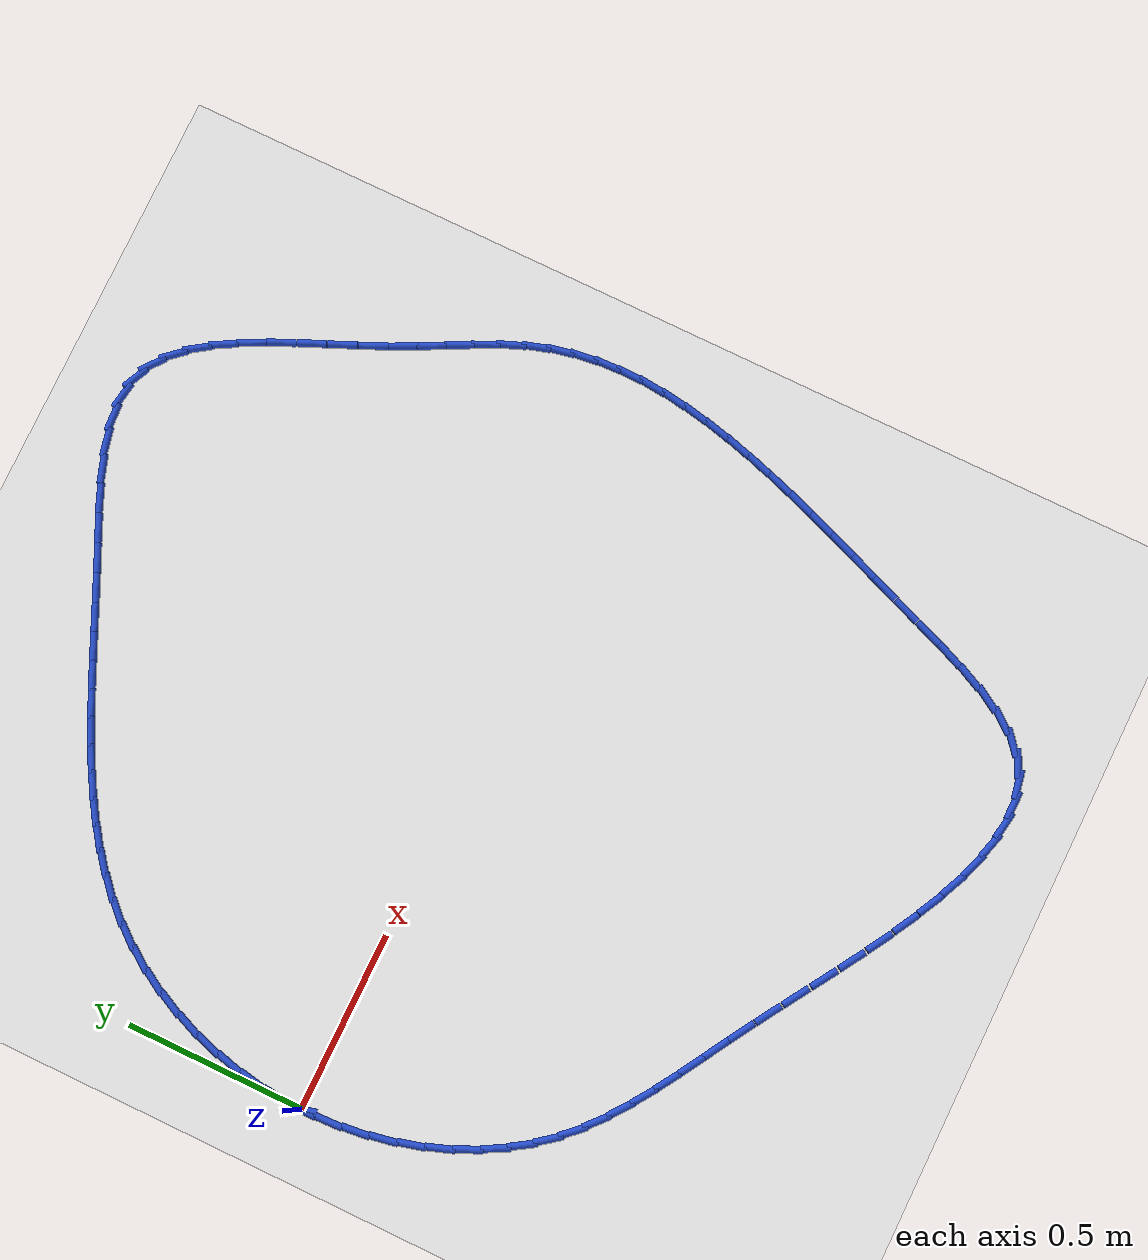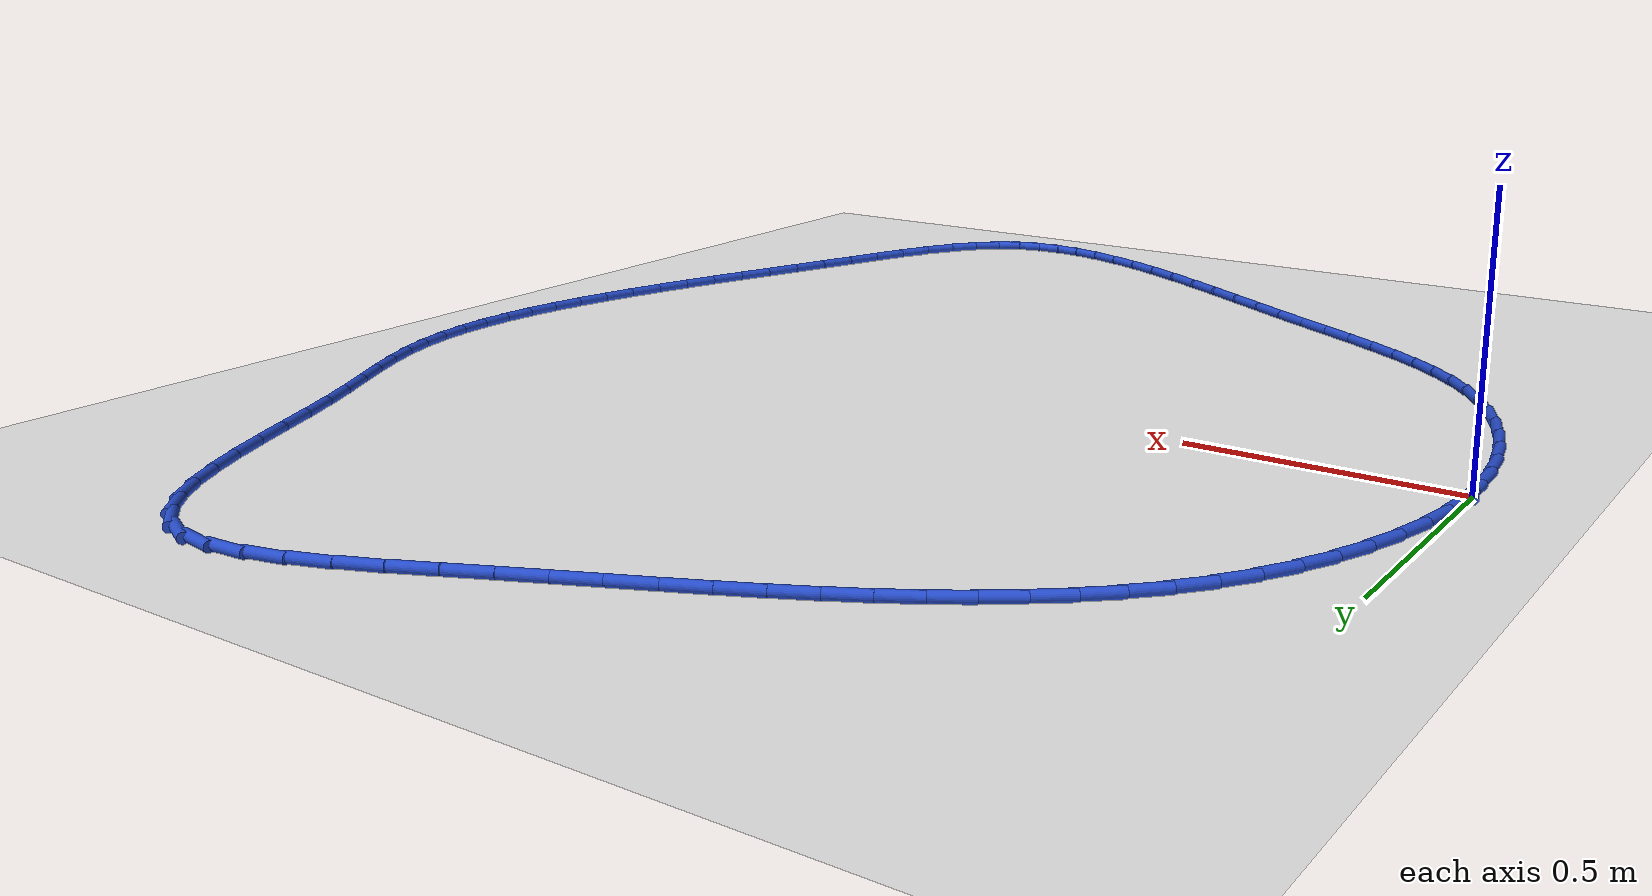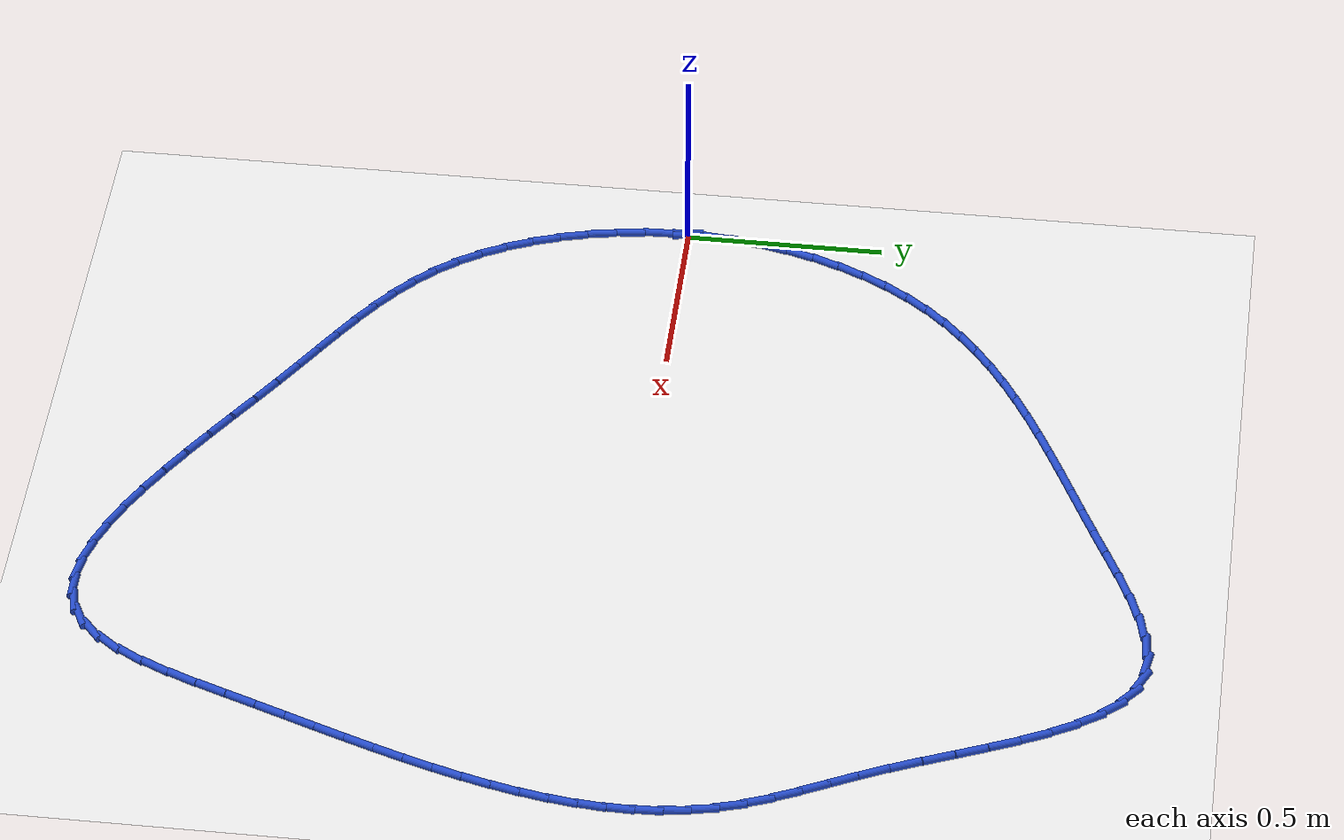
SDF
<sdf version="1.6">
 <world name="default">
  <light name="sun" type="directional">
   <pose>0 0 10 0 -0 0</pose>
   <diffuse>0.8 0.8 0.8 1</diffuse>
   <specular>0.2 0.2 0.2 1</specular>
   <attenuation>
    <range>1000</range>
    <constant>0.9</constant>
    <linear>0.01</linear>
    <quadratic>0.001</quadratic>
   </attenuation>
   <direction>-0.5 0.1 -0.9</direction>
  </light>
  <model name="ground_plane">
   <static>1</static>
   <link name="link">
    <collision name="collision">
     <geometry><plane><normal>0 0 1</normal><size>100 100</size></plane></geometry>
     <surface><friction><ode><mu>100</mu><mu2>50</mu2></ode></friction></surface>
    </collision>
    <visual name="visual">
     <cast_shadows>0</cast_shadows>
     <geometry><plane><normal>0 0 1</normal><size>100 100</size></plane></geometry>
     <material>
      <script><uri>file://media/materials/scripts/gazebo.material</uri><name>Gazebo/WhiteGlow</name></script>
     </material>
    </visual>
   </link>
  </model>
  <gravity>0 0 -9.8</gravity>
  <magnetic_field>6e-06 2.3e-05 -4.2e-05</magnetic_field>
  <atmosphere type="adiabatic"/>
  <physics name="default_physics" default="0" type="ode">
   <max_step_size>0.001</max_step_size>
   <real_time_factor>1</real_time_factor>
   <real_time_update_rate>1000</real_time_update_rate>
  </physics>
  <scene><ambient>0.4 0.4 0.4 1</ambient><background>0.7 0.7 0.7 1</background><shadows>1</shadows></scene>
  <spherical_coordinates>
   <surface_model>EARTH_WGS84</surface_model>
   <latitude_deg>0</latitude_deg>
   <longitude_deg>0</longitude_deg>
   <elevation>0</elevation>
   <heading_deg>0</heading_deg>
  </spherical_coordinates>
  <model name="line">
   <link name="link_0">
    <pose>-2.42861286636753e-17 -9.71445146547012e-17 0.01 0 1.57 1.528046374217537</pose>
    <collision name="collision">
     <geometry><cylinder><radius>0.01</radius><length>0.08</length></cylinder></geometry>
    </collision>
    <visual name="visual">
     <material>
      <script><name>Gazebo/Blue</name><uri>file://media/materials/scripts/gazebo.material</uri></script>
     </material>
     <geometry><cylinder><radius>0.01</radius><length>0.08</length></cylinder></geometry>
    </visual>
   </link>
   <link name="link_1">
    <pose>0.0032014036852461335 0.0748410934730579 0.01 0 1.57 1.45437170285157</pose>
    <collision name="collision">
     <geometry><cylinder><radius>0.01</radius><length>0.08</length></cylinder></geometry>
    </collision>
    <visual name="visual">
     <material>
      <script><name>Gazebo/Blue</name><uri>file://media/materials/scripts/gazebo.material</uri></script>
     </material>
     <geometry><cylinder><radius>0.01</radius><length>0.08</length></cylinder></geometry>
    </visual>
   </link>
   <link name="link_2">
    <pose>0.011870738166101645 0.14896741392785764 0.01 0 1.57 1.3823800493612672</pose>
    <collision name="collision">
     <geometry><cylinder><radius>0.01</radius><length>0.08</length></cylinder></geometry>
    </collision>
    <visual name="visual">
     <material>
      <script><name>Gazebo/Blue</name><uri>file://media/materials/scripts/gazebo.material</uri></script>
     </material>
     <geometry><cylinder><radius>0.01</radius><length>0.08</length></cylinder></geometry>
    </visual>
   </link>
   <link name="link_3">
    <pose>0.025777867337731478 0.2219025532619092 0.01 0 1.57 1.3113718995489045</pose>
    <collision name="collision">
     <geometry><cylinder><radius>0.01</radius><length>0.08</length></cylinder></geometry>
    </collision>
    <visual name="visual">
     <material>
      <script><name>Gazebo/Blue</name><uri>file://media/materials/scripts/gazebo.material</uri></script>
     </material>
     <geometry><cylinder><radius>0.01</radius><length>0.08</length></cylinder></geometry>
    </visual>
   </link>
   <link name="link_4">
    <pose>0.044692655095300605 0.293170103372723 0.01 0 1.57 1.2405920967178967</pose>
    <collision name="collision">
     <geometry><cylinder><radius>0.01</radius><length>0.08</length></cylinder></geometry>
    </collision>
    <visual name="visual">
     <material>
      <script><name>Gazebo/Blue</name><uri>file://media/materials/scripts/gazebo.material</uri></script>
     </material>
     <geometry><cylinder><radius>0.01</radius><length>0.08</length></cylinder></geometry>
    </visual>
   </link>
   <link name="link_5">
    <pose>0.06838496533397398 0.36229365615780895 0.01 0 1.57 1.1692331884978302</pose>
    <collision name="collision">
     <geometry><cylinder><radius>0.01</radius><length>0.08</length></cylinder></geometry>
    </collision>
    <visual name="visual">
     <material>
      <script><name>Gazebo/Blue</name><uri>file://media/materials/scripts/gazebo.material</uri></script>
     </material>
     <geometry><cylinder><radius>0.01</radius><length>0.08</length></cylinder></geometry>
    </visual>
   </link>
   <link name="link_6">
    <pose>0.09662466194891661 0.42879680351467764 0.01 0 1.57 1.0964346640921956</pose>
    <collision name="collision">
     <geometry><cylinder><radius>0.01</radius><length>0.08</length></cylinder></geometry>
    </collision>
    <visual name="visual">
     <material>
      <script><name>Gazebo/Blue</name><uri>file://media/materials/scripts/gazebo.material</uri></script>
     </material>
     <geometry><cylinder><radius>0.01</radius><length>0.08</length></cylinder></geometry>
    </visual>
   </link>
   <link name="link_7">
    <pose>0.12918160883529345 0.4922031373408391 0.01 0 1.57 1.0212815280685452</pose>
    <collision name="collision">
     <geometry><cylinder><radius>0.01</radius><length>0.08</length></cylinder></geometry>
    </collision>
    <visual name="visual">
     <material>
      <script><name>Gazebo/Blue</name><uri>file://media/materials/scripts/gazebo.material</uri></script>
     </material>
     <geometry><cylinder><radius>0.01</radius><length>0.08</length></cylinder></geometry>
    </visual>
   </link>
   <link name="link_8">
    <pose>0.16582566988826944 0.5520362495338035 0.01 0 1.57 0.942865909820828</pose>
    <collision name="collision">
     <geometry><cylinder><radius>0.01</radius><length>0.08</length></cylinder></geometry>
    </collision>
    <visual name="visual">
     <material>
      <script><name>Gazebo/Blue</name><uri>file://media/materials/scripts/gazebo.material</uri></script>
     </material>
     <geometry><cylinder><radius>0.01</radius><length>0.08</length></cylinder></geometry>
    </visual>
   </link>
   <link name="link_9">
    <pose>0.2063269759652634 0.6078270371231659 0.01 0 1.57 0.8633860367128798</pose>
    <collision name="collision">
     <geometry><cylinder><radius>0.01</radius><length>0.08</length></cylinder></geometry>
    </collision>
    <visual name="visual">
     <material>
      <script><name>Gazebo/Blue</name><uri>file://media/materials/scripts/gazebo.material</uri></script>
     </material>
     <geometry><cylinder><radius>0.01</radius><length>0.08</length></cylinder></geometry>
    </visual>
   </link>
   <link name="link_10">
    <pose>0.2504682934167039 0.6594521536792003 0.01 0 1.57 0.7879421222397767</pose>
    <collision name="collision">
     <geometry><cylinder><radius>0.01</radius><length>0.08</length></cylinder></geometry>
    </collision>
    <visual name="visual">
     <material>
      <script><name>Gazebo/Blue</name><uri>file://media/materials/scripts/gazebo.material</uri></script>
     </material>
     <geometry><cylinder><radius>0.01</radius><length>0.08</length></cylinder></geometry>
    </visual>
   </link>
   <link name="link_11">
    <pose>0.29805024281224934 0.7072768140869581 0.01 0 1.57 0.7183269408657676</pose>
    <collision name="collision">
     <geometry><cylinder><radius>0.01</radius><length>0.08</length></cylinder></geometry>
    </collision>
    <visual name="visual">
     <material>
      <script><name>Gazebo/Blue</name><uri>file://media/materials/scripts/gazebo.material</uri></script>
     </material>
     <geometry><cylinder><radius>0.01</radius><length>0.08</length></cylinder></geometry>
    </visual>
   </link>
   <link name="link_12">
    <pose>0.34887479469578697 0.7517031738098163 0.01 0 1.57 0.6556072891083738</pose>
    <collision name="collision">
     <geometry><cylinder><radius>0.01</radius><length>0.08</length></cylinder></geometry>
    </collision>
    <visual name="visual">
     <material>
      <script><name>Gazebo/Blue</name><uri>file://media/materials/scripts/gazebo.material</uri></script>
     </material>
     <geometry><cylinder><radius>0.01</radius><length>0.08</length></cylinder></geometry>
    </visual>
   </link>
   <link name="link_13">
    <pose>0.40274391961120387 0.7931333883111522 0.01 0 1.57 0.6004196233857116</pose>
    <collision name="collision">
     <geometry><cylinder><radius>0.01</radius><length>0.08</length></cylinder></geometry>
    </collision>
    <visual name="visual">
     <material>
      <script><name>Gazebo/Blue</name><uri>file://media/materials/scripts/gazebo.material</uri></script>
     </material>
     <geometry><cylinder><radius>0.01</radius><length>0.08</length></cylinder></geometry>
    </visual>
   </link>
   <link name="link_14">
    <pose>0.45945958810238685 0.8319696130543419 0.01 0 1.57 0.553029410602601</pose>
    <collision name="collision">
     <geometry><cylinder><radius>0.01</radius><length>0.08</length></cylinder></geometry>
    </collision>
    <visual name="visual">
     <material>
      <script><name>Gazebo/Blue</name><uri>file://media/materials/scripts/gazebo.material</uri></script>
     </material>
     <geometry><cylinder><radius>0.01</radius><length>0.08</length></cylinder></geometry>
    </visual>
   </link>
   <link name="link_15">
    <pose>0.5188237707132229 0.8686140035027629 0.01 0 1.57 0.5134206662682532</pose>
    <collision name="collision">
     <geometry><cylinder><radius>0.01</radius><length>0.08</length></cylinder></geometry>
    </collision>
    <visual name="visual">
     <material>
      <script><name>Gazebo/Blue</name><uri>file://media/materials/scripts/gazebo.material</uri></script>
     </material>
     <geometry><cylinder><radius>0.01</radius><length>0.08</length></cylinder></geometry>
    </visual>
   </link>
   <link name="link_16">
    <pose>0.5806384379875995 0.9034687151197911 0.01 0 1.57 0.4813884986732302</pose>
    <collision name="collision">
     <geometry><cylinder><radius>0.01</radius><length>0.08</length></cylinder></geometry>
    </collision>
    <visual name="visual">
     <material>
      <script><name>Gazebo/Blue</name><uri>file://media/materials/scripts/gazebo.material</uri></script>
     </material>
     <geometry><cylinder><radius>0.01</radius><length>0.08</length></cylinder></geometry>
    </visual>
   </link>
   <link name="link_17">
    <pose>0.6447055604694033 0.9369359033688042 0.01 0 1.57 0.45661838418170775</pose>
    <collision name="collision">
     <geometry><cylinder><radius>0.01</radius><length>0.08</length></cylinder></geometry>
    </collision>
    <visual name="visual">
     <material>
      <script><name>Gazebo/Blue</name><uri>file://media/materials/scripts/gazebo.material</uri></script>
     </material>
     <geometry><cylinder><radius>0.01</radius><length>0.08</length></cylinder></geometry>
    </visual>
   </link>
   <link name="link_18">
    <pose>0.7108271087025214 0.9694177237131784 0.01 0 1.57 0.43874589583866824</pose>
    <collision name="collision">
     <geometry><cylinder><radius>0.01</radius><length>0.08</length></cylinder></geometry>
    </collision>
    <visual name="visual">
     <material>
      <script><name>Gazebo/Blue</name><uri>file://media/materials/scripts/gazebo.material</uri></script>
     </material>
     <geometry><cylinder><radius>0.01</radius><length>0.08</length></cylinder></geometry>
    </visual>
   </link>
   <link name="link_19">
    <pose>0.7788050532308409 1.0013163316162905 0.01 0 1.57 0.4273970292135302</pose>
    <collision name="collision">
     <geometry><cylinder><radius>0.01</radius><length>0.08</length></cylinder></geometry>
    </collision>
    <visual name="visual">
     <material>
      <script><name>Gazebo/Blue</name><uri>file://media/materials/scripts/gazebo.material</uri></script>
     </material>
     <geometry><cylinder><radius>0.01</radius><length>0.08</length></cylinder></geometry>
    </visual>
   </link>
   <link name="link_20">
    <pose>0.8484413645982489 1.0330338825415177 0.01 0 1.57 0.42221226081419305</pose>
    <collision name="collision">
     <geometry><cylinder><radius>0.01</radius><length>0.08</length></cylinder></geometry>
    </collision>
    <visual name="visual">
     <material>
      <script><name>Gazebo/Blue</name><uri>file://media/materials/scripts/gazebo.material</uri></script>
     </material>
     <geometry><cylinder><radius>0.01</radius><length>0.08</length></cylinder></geometry>
    </visual>
   </link>
   <link name="link_21">
    <pose>0.9195380133486322 1.0649725319522365 0.01 0 1.57 0.4228582112387548</pose>
    <collision name="collision">
     <geometry><cylinder><radius>0.01</radius><length>0.08</length></cylinder></geometry>
    </collision>
    <visual name="visual">
     <material>
      <script><name>Gazebo/Blue</name><uri>file://media/materials/scripts/gazebo.material</uri></script>
     </material>
     <geometry><cylinder><radius>0.01</radius><length>0.08</length></cylinder></geometry>
    </visual>
   </link>
   <link name="link_22">
    <pose>0.991896970025878 1.0975344353118237 0.01 0 1.57 0.42902863757825377</pose>
    <collision name="collision">
     <geometry><cylinder><radius>0.01</radius><length>0.08</length></cylinder></geometry>
    </collision>
    <visual name="visual">
     <material>
      <script><name>Gazebo/Blue</name><uri>file://media/materials/scripts/gazebo.material</uri></script>
     </material>
     <geometry><cylinder><radius>0.01</radius><length>0.08</length></cylinder></geometry>
    </visual>
   </link>
   <link name="link_23">
    <pose>1.0653201564055734 1.1311215690064915 0.01 0 1.57 0.4348028106694274</pose>
    <collision name="collision">
     <geometry><cylinder><radius>0.01</radius><length>0.08</length></cylinder></geometry>
    </collision>
    <visual name="visual">
     <material>
      <script><name>Gazebo/Blue</name><uri>file://media/materials/scripts/gazebo.material</uri></script>
     </material>
     <geometry><cylinder><radius>0.01</radius><length>0.08</length></cylinder></geometry>
    </visual>
   </link>
   <link name="link_24">
    <pose>1.139450217808166 1.1655510463835328 0.01 0 1.57 0.42193704675553034</pose>
    <collision name="collision">
     <geometry><cylinder><radius>0.01</radius><length>0.08</length></cylinder></geometry>
    </collision>
    <visual name="visual">
     <material>
      <script><name>Gazebo/Blue</name><uri>file://media/materials/scripts/gazebo.material</uri></script>
     </material>
     <geometry><cylinder><radius>0.01</radius><length>0.08</length></cylinder></geometry>
    </visual>
   </link>
   <link name="link_25">
    <pose>1.2134162550437269 1.1987542456846056 0.01 0 1.57 0.3852068171505385</pose>
    <collision name="collision">
     <geometry><cylinder><radius>0.01</radius><length>0.08</length></cylinder></geometry>
    </collision>
    <visual name="visual">
     <material>
      <script><name>Gazebo/Blue</name><uri>file://media/materials/scripts/gazebo.material</uri></script>
     </material>
     <geometry><cylinder><radius>0.01</radius><length>0.08</length></cylinder></geometry>
    </visual>
   </link>
   <link name="link_26">
    <pose>1.2862440655493776 1.2282832152335816 0.01 0 1.57 0.3196490474521178</pose>
    <collision name="collision">
     <geometry><cylinder><radius>0.01</radius><length>0.08</length></cylinder></geometry>
    </collision>
    <visual name="visual">
     <material>
      <script><name>Gazebo/Blue</name><uri>file://media/materials/scripts/gazebo.material</uri></script>
     </material>
     <geometry><cylinder><radius>0.01</radius><length>0.08</length></cylinder></geometry>
    </visual>
   </link>
   <link name="link_27">
    <pose>1.3569594467622408 1.251690003354331 0.01 0 1.57 0.21596251849452877</pose>
    <collision name="collision">
     <geometry><cylinder><radius>0.01</radius><length>0.08</length></cylinder></geometry>
    </collision>
    <visual name="visual">
     <material>
      <script><name>Gazebo/Blue</name><uri>file://media/materials/scripts/gazebo.material</uri></script>
     </material>
     <geometry><cylinder><radius>0.01</radius><length>0.08</length></cylinder></geometry>
    </visual>
   </link>
   <link name="link_28">
    <pose>1.4245881961194373 1.2665266583707233 0.01 0 1.57 0.05999861827035014</pose>
    <collision name="collision">
     <geometry><cylinder><radius>0.01</radius><length>0.08</length></cylinder></geometry>
    </collision>
    <visual name="visual">
     <material>
      <script><name>Gazebo/Blue</name><uri>file://media/materials/scripts/gazebo.material</uri></script>
     </material>
     <geometry><cylinder><radius>0.01</radius><length>0.08</length></cylinder></geometry>
    </visual>
   </link>
   <link name="link_29">
    <pose>1.4881561110580894 1.27034522860663 0.01 0 1.57 -0.1633416712223227</pose>
    <collision name="collision">
     <geometry><cylinder><radius>0.01</radius><length>0.08</length></cylinder></geometry>
    </collision>
    <visual name="visual">
     <material>
      <script><name>Gazebo/Blue</name><uri>file://media/materials/scripts/gazebo.material</uri></script>
     </material>
     <geometry><cylinder><radius>0.01</radius><length>0.08</length></cylinder></geometry>
    </visual>
   </link>
   <link name="link_30">
    <pose>1.5466892264995975 1.260698384504559 0.01 0 1.57 -0.4350478159116362</pose>
    <collision name="collision">
     <geometry><cylinder><radius>0.01</radius><length>0.08</length></cylinder></geometry>
    </collision>
    <visual name="visual">
     <material>
      <script><name>Gazebo/Blue</name><uri>file://media/materials/scripts/gazebo.material</uri></script>
     </material>
     <geometry><cylinder><radius>0.01</radius><length>0.08</length></cylinder></geometry>
    </visual>
   </link>
   <link name="link_31">
    <pose>1.5995861563114733 1.236114811880975 0.01 0 1.57 -0.6723388079699042</pose>
    <collision name="collision">
     <geometry><cylinder><radius>0.01</radius><length>0.08</length></cylinder></geometry>
    </collision>
    <visual name="visual">
     <material>
      <script><name>Gazebo/Blue</name><uri>file://media/materials/scripts/gazebo.material</uri></script>
     </material>
     <geometry><cylinder><radius>0.01</radius><length>0.08</length></cylinder></geometry>
    </visual>
   </link>
   <link name="link_32">
    <pose>1.647371961164178 1.1980740594743922 0.01 0 1.57 -0.8504593356943528</pose>
    <collision name="collision">
     <geometry><cylinder><radius>0.01</radius><length>0.08</length></cylinder></geometry>
    </collision>
    <visual name="visual">
     <material>
      <script><name>Gazebo/Blue</name><uri>file://media/materials/scripts/gazebo.material</uri></script>
     </material>
     <geometry><cylinder><radius>0.01</radius><length>0.08</length></cylinder></geometry>
    </visual>
   </link>
   <link name="link_33">
    <pose>1.6907837591904258 1.1486111860581305 0.01 0 1.57 -0.9764491810154835</pose>
    <collision name="collision">
     <geometry><cylinder><radius>0.01</radius><length>0.08</length></cylinder></geometry>
    </collision>
    <visual name="visual">
     <material>
      <script><name>Gazebo/Blue</name><uri>file://media/materials/scripts/gazebo.material</uri></script>
     </material>
     <geometry><cylinder><radius>0.01</radius><length>0.08</length></cylinder></geometry>
    </visual>
   </link>
   <link name="link_34">
    <pose>1.7305586685229333 1.0897612504055119 0.01 0 1.57 -1.0625871320391789</pose>
    <collision name="collision">
     <geometry><cylinder><radius>0.01</radius><length>0.08</length></cylinder></geometry>
    </collision>
    <visual name="visual">
     <material>
      <script><name>Gazebo/Blue</name><uri>file://media/materials/scripts/gazebo.material</uri></script>
     </material>
     <geometry><cylinder><radius>0.01</radius><length>0.08</length></cylinder></geometry>
    </visual>
   </link>
   <link name="link_35">
    <pose>1.7674338072944156 1.023559311289856 0.01 0 1.57 -1.1189282467852923</pose>
    <collision name="collision">
     <geometry><cylinder><radius>0.01</radius><length>0.08</length></cylinder></geometry>
    </collision>
    <visual name="visual">
     <material>
      <script><name>Gazebo/Blue</name><uri>file://media/materials/scripts/gazebo.material</uri></script>
     </material>
     <geometry><cylinder><radius>0.01</radius><length>0.08</length></cylinder></geometry>
    </visual>
   </link>
   <link name="link_36">
    <pose>1.802146293637588 0.9520404274844848 0.01 0 1.57 -1.1521013736844457</pose>
    <collision name="collision">
     <geometry><cylinder><radius>0.01</radius><length>0.08</length></cylinder></geometry>
    </collision>
    <visual name="visual">
     <material>
      <script><name>Gazebo/Blue</name><uri>file://media/materials/scripts/gazebo.material</uri></script>
     </material>
     <geometry><cylinder><radius>0.01</radius><length>0.08</length></cylinder></geometry>
    </visual>
   </link>
   <link name="link_37">
    <pose>1.835433245685167 0.8772396577627181 0.01 0 1.57 -1.165830015112218</pose>
    <collision name="collision">
     <geometry><cylinder><radius>0.01</radius><length>0.08</length></cylinder></geometry>
    </collision>
    <visual name="visual">
     <material>
      <script><name>Gazebo/Blue</name><uri>file://media/materials/scripts/gazebo.material</uri></script>
     </material>
     <geometry><cylinder><radius>0.01</radius><length>0.08</length></cylinder></geometry>
    </visual>
   </link>
   <link name="link_38">
    <pose>1.868031781569867 0.8011920608978772 0.01 0 1.57 -1.1614987470934435</pose>
    <collision name="collision">
     <geometry><cylinder><radius>0.01</radius><length>0.08</length></cylinder></geometry>
    </collision>
    <visual name="visual">
     <material>
      <script><name>Gazebo/Blue</name><uri>file://media/materials/scripts/gazebo.material</uri></script>
     </material>
     <geometry><cylinder><radius>0.01</radius><length>0.08</length></cylinder></geometry>
    </visual>
   </link>
   <link name="link_39">
    <pose>1.9006790194244045 0.725932695663283 0.01 0 1.57 -1.1385014248168572</pose>
    <collision name="collision">
     <geometry><cylinder><radius>0.01</radius><length>0.08</length></cylinder></geometry>
    </collision>
    <visual name="visual">
     <material>
      <script><name>Gazebo/Blue</name><uri>file://media/materials/scripts/gazebo.material</uri></script>
     </material>
     <geometry><cylinder><radius>0.01</radius><length>0.08</length></cylinder></geometry>
    </visual>
   </link>
   <link name="link_40">
    <pose>1.9341054683650056 0.6534872327725901 0.01 0 1.57 -1.107765905314561</pose>
    <collision name="collision">
     <geometry><cylinder><radius>0.01</radius><length>0.08</length></cylinder></geometry>
    </collision>
    <visual name="visual">
     <material>
      <script><name>Gazebo/Blue</name><uri>file://media/materials/scripts/gazebo.material</uri></script>
     </material>
     <geometry><cylinder><radius>0.01</radius><length>0.08</length></cylinder></geometry>
    </visual>
   </link>
   <link name="link_41">
    <pose>1.9683480971645875 0.5848961739457817 0.01 0 1.57 -1.0945845094351552</pose>
    <collision name="collision">
     <geometry><cylinder><radius>0.01</radius><length>0.08</length></cylinder></geometry>
    </collision>
    <visual name="visual">
     <material>
      <script><name>Gazebo/Blue</name><uri>file://media/materials/scripts/gazebo.material</uri></script>
     </material>
     <geometry><cylinder><radius>0.01</radius><length>0.08</length></cylinder></geometry>
    </visual>
   </link>
   <link name="link_42">
    <pose>2.0021505395274315 0.5193628478813392 0.01 0 1.57 -1.104279570610373</pose>
    <collision name="collision">
     <geometry><cylinder><radius>0.01</radius><length>0.08</length></cylinder></geometry>
    </collision>
    <visual name="visual">
     <material>
      <script><name>Gazebo/Blue</name><uri>file://media/materials/scripts/gazebo.material</uri></script>
     </material>
     <geometry><cylinder><radius>0.01</radius><length>0.08</length></cylinder></geometry>
    </visual>
   </link>
   <link name="link_43">
    <pose>2.0341150532536467 0.4558897598381465 0.01 0 1.57 -1.1393920107299533</pose>
    <collision name="collision">
     <geometry><cylinder><radius>0.01</radius><length>0.08</length></cylinder></geometry>
    </collision>
    <visual name="visual">
     <material>
      <script><name>Gazebo/Blue</name><uri>file://media/materials/scripts/gazebo.material</uri></script>
     </material>
     <geometry><cylinder><radius>0.01</radius><length>0.08</length></cylinder></geometry>
    </visual>
   </link>
   <link name="link_44">
    <pose>2.0628438961433417 0.3934794150750888 0.01 0 1.57 -1.2019950330415448</pose>
    <collision name="collision">
     <geometry><cylinder><radius>0.01</radius><length>0.08</length></cylinder></geometry>
    </collision>
    <visual name="visual">
     <material>
      <script><name>Gazebo/Blue</name><uri>file://media/materials/scripts/gazebo.material</uri></script>
     </material>
     <geometry><cylinder><radius>0.01</radius><length>0.08</length></cylinder></geometry>
    </visual>
   </link>
   <link name="link_45">
    <pose>2.0869393259966267 0.3311343188510513 0.01 0 1.57 -1.2890903699414067</pose>
    <collision name="collision">
     <geometry><cylinder><radius>0.01</radius><length>0.08</length></cylinder></geometry>
    </collision>
    <visual name="visual">
     <material>
      <script><name>Gazebo/Blue</name><uri>file://media/materials/scripts/gazebo.material</uri></script>
     </material>
     <geometry><cylinder><radius>0.01</radius><length>0.08</length></cylinder></geometry>
    </visual>
   </link>
   <link name="link_46">
    <pose>2.1052165054255 0.26797938729597814 0.01 0 1.57 -1.379269589560936</pose>
    <collision name="collision">
     <geometry><cylinder><radius>0.01</radius><length>0.08</length></cylinder></geometry>
    </collision>
    <visual name="visual">
     <material>
      <script><name>Gazebo/Blue</name><uri>file://media/materials/scripts/gazebo.material</uri></script>
     </material>
     <geometry><cylinder><radius>0.01</radius><length>0.08</length></cylinder></geometry>
    </visual>
   </link>
   <link name="link_47">
    <pose>2.11765892763691 0.20381127507189717 0.01 0 1.57 -1.4639256247809096</pose>
    <collision name="collision">
     <geometry><cylinder><radius>0.01</radius><length>0.08</length></cylinder></geometry>
    </collision>
    <visual name="visual">
     <material>
      <script><name>Gazebo/Blue</name><uri>file://media/materials/scripts/gazebo.material</uri></script>
     </material>
     <geometry><cylinder><radius>0.01</radius><length>0.08</length></cylinder></geometry>
    </visual>
   </link>
   <link name="link_48">
    <pose>2.1246487640680987 0.13865585922904844 0.01 0 1.57 -1.541768482228212</pose>
    <collision name="collision">
     <geometry><cylinder><radius>0.01</radius><length>0.08</length></cylinder></geometry>
    </collision>
    <visual name="visual">
     <material>
      <script><name>Gazebo/Blue</name><uri>file://media/materials/scripts/gazebo.material</uri></script>
     </material>
     <geometry><cylinder><radius>0.01</radius><length>0.08</length></cylinder></geometry>
    </visual>
   </link>
   <link name="link_49">
    <pose>2.126568527041381 0.07253921281153962 0.01 0 1.57 1.5295412438022034</pose>
    <collision name="collision">
     <geometry><cylinder><radius>0.01</radius><length>0.08</length></cylinder></geometry>
    </collision>
    <visual name="visual">
     <material>
      <script><name>Gazebo/Blue</name><uri>file://media/materials/scripts/gazebo.material</uri></script>
     </material>
     <geometry><cylinder><radius>0.01</radius><length>0.08</length></cylinder></geometry>
    </visual>
   </link>
   <link name="link_50">
    <pose>2.123800728879063 0.005487408863479131 0.01 0 1.57 1.4670973263127185</pose>
    <collision name="collision">
     <geometry><cylinder><radius>0.01</radius><length>0.08</length></cylinder></geometry>
    </collision>
    <visual name="visual">
     <material>
      <script><name>Gazebo/Blue</name><uri>file://media/materials/scripts/gazebo.material</uri></script>
     </material>
     <geometry><cylinder><radius>0.01</radius><length>0.08</length></cylinder></geometry>
    </visual>
   </link>
   <link name="link_51">
    <pose>2.1167278819034556 -0.062473479571024865 0.01 0 1.57 1.4124192463904386</pose>
    <collision name="collision">
     <geometry><cylinder><radius>0.01</radius><length>0.08</length></cylinder></geometry>
    </collision>
    <visual name="visual">
     <material>
      <script><name>Gazebo/Blue</name><uri>file://media/materials/scripts/gazebo.material</uri></script>
     </material>
     <geometry><cylinder><radius>0.01</radius><length>0.08</length></cylinder></geometry>
    </visual>
   </link>
   <link name="link_52">
    <pose>2.10573249843687 -0.13131737944786426 0.01 0 1.57 1.365202947098576</pose>
    <collision name="collision">
     <geometry><cylinder><radius>0.01</radius><length>0.08</length></cylinder></geometry>
    </collision>
    <visual name="visual">
     <material>
      <script><name>Gazebo/Blue</name><uri>file://media/materials/scripts/gazebo.material</uri></script>
     </material>
     <geometry><cylinder><radius>0.01</radius><length>0.08</length></cylinder></geometry>
    </visual>
   </link>
   <link name="link_53">
    <pose>2.0911970908016158 -0.20101821772293071 0.01 0 1.57 1.325017268567875</pose>
    <collision name="collision">
     <geometry><cylinder><radius>0.01</radius><length>0.08</length></cylinder></geometry>
    </collision>
    <visual name="visual">
     <material>
      <script><name>Gazebo/Blue</name><uri>file://media/materials/scripts/gazebo.material</uri></script>
     </material>
     <geometry><cylinder><radius>0.01</radius><length>0.08</length></cylinder></geometry>
    </visual>
   </link>
   <link name="link_54">
    <pose>2.0735041713200024 -0.27154992135211614 0.01 0 1.57 1.2913816379884935</pose>
    <collision name="collision">
     <geometry><cylinder><radius>0.01</radius><length>0.08</length></cylinder></geometry>
    </collision>
    <visual name="visual">
     <material>
      <script><name>Gazebo/Blue</name><uri>file://media/materials/scripts/gazebo.material</uri></script>
     </material>
     <geometry><cylinder><radius>0.01</radius><length>0.08</length></cylinder></geometry>
    </visual>
   </link>
   <link name="link_55">
    <pose>2.053036252314341 -0.3428864172913124 0.01 0 1.57 1.2638185570809644</pose>
    <collision name="collision">
     <geometry><cylinder><radius>0.01</radius><length>0.08</length></cylinder></geometry>
    </collision>
    <visual name="visual">
     <material>
      <script><name>Gazebo/Blue</name><uri>file://media/materials/scripts/gazebo.material</uri></script>
     </material>
     <geometry><cylinder><radius>0.01</radius><length>0.08</length></cylinder></geometry>
    </visual>
   </link>
   <link name="link_56">
    <pose>2.0301758461069404 -0.4150016324964112 0.01 0 1.57 1.2418858609002468</pose>
    <collision name="collision">
     <geometry><cylinder><radius>0.01</radius><length>0.08</length></cylinder></geometry>
    </collision>
    <visual name="visual">
     <material>
      <script><name>Gazebo/Blue</name><uri>file://media/materials/scripts/gazebo.material</uri></script>
     </material>
     <geometry><cylinder><radius>0.01</radius><length>0.08</length></cylinder></geometry>
    </visual>
   </link>
   <link name="link_57">
    <pose>2.0053054650201108 -0.48786949392330453 0.01 0 1.57 1.2251944690930145</pose>
    <collision name="collision">
     <geometry><cylinder><radius>0.01</radius><length>0.08</length></cylinder></geometry>
    </collision>
    <visual name="visual">
     <material>
      <script><name>Gazebo/Blue</name><uri>file://media/materials/scripts/gazebo.material</uri></script>
     </material>
     <geometry><cylinder><radius>0.01</radius><length>0.08</length></cylinder></geometry>
    </visual>
   </link>
   <link name="link_58">
    <pose>1.9788076213761636 -0.5614639285278832 0.01 0 1.57 1.2134165500644043</pose>
    <collision name="collision">
     <geometry><cylinder><radius>0.01</radius><length>0.08</length></cylinder></geometry>
    </collision>
    <visual name="visual">
     <material>
      <script><name>Gazebo/Blue</name><uri>file://media/materials/scripts/gazebo.material</uri></script>
     </material>
     <geometry><cylinder><radius>0.01</radius><length>0.08</length></cylinder></geometry>
    </visual>
   </link>
   <link name="link_59">
    <pose>1.9510648274974076 -0.6357588632660408 0.01 0 1.57 1.2062877708367783</pose>
    <collision name="collision">
     <geometry><cylinder><radius>0.01</radius><length>0.08</length></cylinder></geometry>
    </collision>
    <visual name="visual">
     <material>
      <script><name>Gazebo/Blue</name><uri>file://media/materials/scripts/gazebo.material</uri></script>
     </material>
     <geometry><cylinder><radius>0.01</radius><length>0.08</length></cylinder></geometry>
    </visual>
   </link>
   <link name="link_60">
    <pose>1.922459595706153 -0.7107282250936683 0.01 0 1.57 1.203606128499654</pose>
    <collision name="collision">
     <geometry><cylinder><radius>0.01</radius><length>0.08</length></cylinder></geometry>
    </collision>
    <visual name="visual">
     <material>
      <script><name>Gazebo/Blue</name><uri>file://media/materials/scripts/gazebo.material</uri></script>
     </material>
     <geometry><cylinder><radius>0.01</radius><length>0.08</length></cylinder></geometry>
    </visual>
   </link>
   <link name="link_61">
    <pose>1.89337443832471 -0.7863459409666578 0.01 0 1.57 1.2052289236254219</pose>
    <collision name="collision">
     <geometry><cylinder><radius>0.01</radius><length>0.08</length></cylinder></geometry>
    </collision>
    <visual name="visual">
     <material>
      <script><name>Gazebo/Blue</name><uri>file://media/materials/scripts/gazebo.material</uri></script>
     </material>
     <geometry><cylinder><radius>0.01</radius><length>0.08</length></cylinder></geometry>
    </visual>
   </link>
   <link name="link_62">
    <pose>1.8641918676753884 -0.8625859378409003 0.01 0 1.57 1.208674409209756</pose>
    <collision name="collision">
     <geometry><cylinder><radius>0.01</radius><length>0.08</length></cylinder></geometry>
    </collision>
    <visual name="visual">
     <material>
      <script><name>Gazebo/Blue</name><uri>file://media/materials/scripts/gazebo.material</uri></script>
     </material>
     <geometry><cylinder><radius>0.01</radius><length>0.08</length></cylinder></geometry>
    </visual>
   </link>
   <link name="link_63">
    <pose>1.835165831649697 -0.9392066906443827 0.01 0 1.57 1.19845537168647</pose>
    <collision name="collision">
     <geometry><cylinder><radius>0.01</radius><length>0.08</length></cylinder></geometry>
    </collision>
    <visual name="visual">
     <material>
      <script><name>Gazebo/Blue</name><uri>file://media/materials/scripts/gazebo.material</uri></script>
     </material>
     <geometry><cylinder><radius>0.01</radius><length>0.08</length></cylinder></geometry>
    </visual>
   </link>
   <link name="link_64">
    <pose>1.805726028659527 -1.0145853729546586 0.01 0 1.57 1.1670140626742511</pose>
    <collision name="collision">
     <geometry><cylinder><radius>0.01</radius><length>0.08</length></cylinder></geometry>
    </collision>
    <visual name="visual">
     <material>
      <script><name>Gazebo/Blue</name><uri>file://media/materials/scripts/gazebo.material</uri></script>
     </material>
     <geometry><cylinder><radius>0.01</radius><length>0.08</length></cylinder></geometry>
    </visual>
   </link>
   <link name="link_65">
    <pose>1.7749768232390746 -1.086553954335554 0.01 0 1.57 1.1100391380703867</pose>
    <collision name="collision">
     <geometry><cylinder><radius>0.01</radius><length>0.08</length></cylinder></geometry>
    </collision>
    <visual name="visual">
     <material>
      <script><name>Gazebo/Blue</name><uri>file://media/materials/scripts/gazebo.material</uri></script>
     </material>
     <geometry><cylinder><radius>0.01</radius><length>0.08</length></cylinder></geometry>
    </visual>
   </link>
   <link name="link_66">
    <pose>1.742021784663883 -1.1529430716332185 0.01 0 1.57 1.0195004943974098</pose>
    <collision name="collision">
     <geometry><cylinder><radius>0.01</radius><length>0.08</length></cylinder></geometry>
    </collision>
    <visual name="visual">
     <material>
      <script><name>Gazebo/Blue</name><uri>file://media/materials/scripts/gazebo.material</uri></script>
     </material>
     <geometry><cylinder><radius>0.01</radius><length>0.08</length></cylinder></geometry>
    </visual>
   </link>
   <link name="link_67">
    <pose>1.7059644822094961 -1.2115833616938012 0.01 0 1.57 0.8827051966175377</pose>
    <collision name="collision">
     <geometry><cylinder><radius>0.01</radius><length>0.08</length></cylinder></geometry>
    </collision>
    <visual name="visual">
     <material>
      <script><name>Gazebo/Blue</name><uri>file://media/materials/scripts/gazebo.material</uri></script>
     </material>
     <geometry><cylinder><radius>0.01</radius><length>0.08</length></cylinder></geometry>
    </visual>
   </link>
   <link name="link_68">
    <pose>1.6659084851514583 -1.2603054613634526 0.01 0 1.57 0.6839320241770657</pose>
    <collision name="collision">
     <geometry><cylinder><radius>0.01</radius><length>0.08</length></cylinder></geometry>
    </collision>
    <visual name="visual">
     <material>
      <script><name>Gazebo/Blue</name><uri>file://media/materials/scripts/gazebo.material</uri></script>
     </material>
     <geometry><cylinder><radius>0.01</radius><length>0.08</length></cylinder></geometry>
    </visual>
   </link>
   <link name="link_69">
    <pose>1.620960222593406 -1.2969466313921025 0.01 0 1.57 0.4355817376128673</pose>
    <collision name="collision">
     <geometry><cylinder><radius>0.01</radius><length>0.08</length></cylinder></geometry>
    </collision>
    <visual name="visual">
     <material>
      <script><name>Gazebo/Blue</name><uri>file://media/materials/scripts/gazebo.material</uri></script>
     </material>
     <geometry><cylinder><radius>0.01</radius><length>0.08</length></cylinder></geometry>
    </visual>
   </link>
   <link name="link_70">
    <pose>1.5706625131725451 -1.3203548933819602 0.01 0 1.57 0.19861118759336102</pose>
    <collision name="collision">
     <geometry><cylinder><radius>0.01</radius><length>0.08</length></cylinder></geometry>
    </collision>
    <visual name="visual">
     <material>
      <script><name>Gazebo/Blue</name><uri>file://media/materials/scripts/gazebo.material</uri></script>
     </material>
     <geometry><cylinder><radius>0.01</radius><length>0.08</length></cylinder></geometry>
    </visual>
   </link>
   <link name="link_71">
    <pose>1.515459260225507 -1.3314653518478776 0.01 0 1.57 9.773516493443308e-05</pose>
    <collision name="collision">
     <geometry><cylinder><radius>0.01</radius><length>0.08</length></cylinder></geometry>
    </collision>
    <visual name="visual">
     <material>
      <script><name>Gazebo/Blue</name><uri>file://media/materials/scripts/gazebo.material</uri></script>
     </material>
     <geometry><cylinder><radius>0.01</radius><length>0.08</length></cylinder></geometry>
    </visual>
   </link>
   <link name="link_72">
    <pose>1.4559057832804359 -1.3314711723167878 0.01 0 1.57 -0.15511180893869933</pose>
    <collision name="collision">
     <geometry><cylinder><radius>0.01</radius><length>0.08</length></cylinder></geometry>
    </collision>
    <visual name="visual">
     <material>
      <script><name>Gazebo/Blue</name><uri>file://media/materials/scripts/gazebo.material</uri></script>
     </material>
     <geometry><cylinder><radius>0.01</radius><length>0.08</length></cylinder></geometry>
    </visual>
   </link>
   <link name="link_73">
    <pose>1.3925574018654774 -1.3215655203156214 0.01 0 1.57 -0.2727208080322018</pose>
    <collision name="collision">
     <geometry><cylinder><radius>0.01</radius><length>0.08</length></cylinder></geometry>
    </collision>
    <visual name="visual">
     <material>
      <script><name>Gazebo/Blue</name><uri>file://media/materials/scripts/gazebo.material</uri></script>
     </material>
     <geometry><cylinder><radius>0.01</radius><length>0.08</length></cylinder></geometry>
    </visual>
   </link>
   <link name="link_74">
    <pose>1.3259694355087777 -1.3029415613713096 0.01 0 1.57 -0.36094590056530546</pose>
    <collision name="collision">
     <geometry><cylinder><radius>0.01</radius><length>0.08</length></cylinder></geometry>
    </collision>
    <visual name="visual">
     <material>
      <script><name>Gazebo/Blue</name><uri>file://media/materials/scripts/gazebo.material</uri></script>
     </material>
     <geometry><cylinder><radius>0.01</radius><length>0.08</length></cylinder></geometry>
    </visual>
   </link>
   <link name="link_75">
    <pose>1.256697203738483 -1.2767924610107857 0.01 0 1.57 -0.4269291864469542</pose>
    <collision name="collision">
     <geometry><cylinder><radius>0.01</radius><length>0.08</length></cylinder></geometry>
    </collision>
    <visual name="visual">
     <material>
      <script><name>Gazebo/Blue</name><uri>file://media/materials/scripts/gazebo.material</uri></script>
     </material>
     <geometry><cylinder><radius>0.01</radius><length>0.08</length></cylinder></geometry>
    </visual>
   </link>
   <link name="link_76">
    <pose>1.185296026082738 -1.2443113847609806 0.01 0 1.57 -0.4759854665950583</pose>
    <collision name="collision">
     <geometry><cylinder><radius>0.01</radius><length>0.08</length></cylinder></geometry>
    </collision>
    <visual name="visual">
     <material>
      <script><name>Gazebo/Blue</name><uri>file://media/materials/scripts/gazebo.material</uri></script>
     </material>
     <geometry><cylinder><radius>0.01</radius><length>0.08</length></cylinder></geometry>
    </visual>
   </link>
   <link name="link_77">
    <pose>1.1123212220696888 -1.2066914981488255 0.01 0 1.57 -0.5118185322017338</pose>
    <collision name="collision">
     <geometry><cylinder><radius>0.01</radius><length>0.08</length></cylinder></geometry>
    </collision>
    <visual name="visual">
     <material>
      <script><name>Gazebo/Blue</name><uri>file://media/materials/scripts/gazebo.material</uri></script>
     </material>
     <geometry><cylinder><radius>0.01</radius><length>0.08</length></cylinder></geometry>
    </visual>
   </link>
   <link name="link_78">
    <pose>1.038328111227481 -1.1651259667012528 0.01 0 1.57 -0.5368998807163328</pose>
    <collision name="collision">
     <geometry><cylinder><radius>0.01</radius><length>0.08</length></cylinder></geometry>
    </collision>
    <visual name="visual">
     <material>
      <script><name>Gazebo/Blue</name><uri>file://media/materials/scripts/gazebo.material</uri></script>
     </material>
     <geometry><cylinder><radius>0.01</radius><length>0.08</length></cylinder></geometry>
    </visual>
   </link>
   <link name="link_79">
    <pose>0.9638720130842603 -1.120807955945194 0.01 0 1.57 -0.5527759525580269</pose>
    <collision name="collision">
     <geometry><cylinder><radius>0.01</radius><length>0.08</length></cylinder></geometry>
    </collision>
    <visual name="visual">
     <material>
      <script><name>Gazebo/Blue</name><uri>file://media/materials/scripts/gazebo.material</uri></script>
     </material>
     <geometry><cylinder><radius>0.01</radius><length>0.08</length></cylinder></geometry>
    </visual>
   </link>
   <link name="link_80">
    <pose>0.8895082471681718 -1.0749306314075802 0.01 0 1.57 -0.5602647230659725</pose>
    <collision name="collision">
     <geometry><cylinder><radius>0.01</radius><length>0.08</length></cylinder></geometry>
    </collision>
    <visual name="visual">
     <material>
      <script><name>Gazebo/Blue</name><uri>file://media/materials/scripts/gazebo.material</uri></script>
     </material>
     <geometry><cylinder><radius>0.01</radius><length>0.08</length></cylinder></geometry>
    </visual>
   </link>
   <link name="link_81">
    <pose>0.8157921330073619 -1.0286871586153443 0.01 0 1.57 -0.5595482022105326</pose>
    <collision name="collision">
     <geometry><cylinder><radius>0.01</radius><length>0.08</length></cylinder></geometry>
    </collision>
    <visual name="visual">
     <material>
      <script><name>Gazebo/Blue</name><uri>file://media/materials/scripts/gazebo.material</uri></script>
     </material>
     <geometry><cylinder><radius>0.01</radius><length>0.08</length></cylinder></geometry>
    </visual>
   </link>
   <link name="link_82">
    <pose>0.7432789901299759 -0.9832707030954173 0.01 0 1.57 -0.5502266707067126</pose>
    <collision name="collision">
     <geometry><cylinder><radius>0.01</radius><length>0.08</length></cylinder></geometry>
    </collision>
    <visual name="visual">
     <material>
      <script><name>Gazebo/Blue</name><uri>file://media/materials/scripts/gazebo.material</uri></script>
     </material>
     <geometry><cylinder><radius>0.01</radius><length>0.08</length></cylinder></geometry>
    </visual>
   </link>
   <link name="link_83">
    <pose>0.6725231796166625 -0.9398678767086828 0.01 0 1.57 -0.5379479177260925</pose>
    <collision name="collision">
     <geometry><cylinder><radius>0.01</radius><length>0.08</length></cylinder></geometry>
    </collision>
    <visual name="visual">
     <material>
      <script><name>Gazebo/Blue</name><uri>file://media/materials/scripts/gazebo.material</uri></script>
     </material>
     <geometry><cylinder><radius>0.01</radius><length>0.08</length></cylinder></geometry>
    </visual>
   </link>
   <link name="link_84">
    <pose>0.6039774530247268 -0.8989705063793075 0.01 0 1.57 -0.5354622002388985</pose>
    <collision name="collision">
     <geometry><cylinder><radius>0.01</radius><length>0.08</length></cylinder></geometry>
    </collision>
    <visual name="visual">
     <material>
      <script><name>Gazebo/Blue</name><uri>file://media/materials/scripts/gazebo.material</uri></script>
     </material>
     <geometry><cylinder><radius>0.01</radius><length>0.08</length></cylinder></geometry>
    </visual>
   </link>
   <link name="link_85">
    <pose>0.5379045098198065 -0.8597708820773152 0.01 0 1.57 -0.5454776919389636</pose>
    <collision name="collision">
     <geometry><cylinder><radius>0.01</radius><length>0.08</length></cylinder></geometry>
    </collision>
    <visual name="visual">
     <material>
      <script><name>Gazebo/Blue</name><uri>file://media/materials/scripts/gazebo.material</uri></script>
     </material>
     <geometry><cylinder><radius>0.01</radius><length>0.08</length></cylinder></geometry>
    </visual>
   </link>
   <link name="link_86">
    <pose>0.47454619767349127 -0.8213187135112235 0.01 0 1.57 -0.5692877008698737</pose>
    <collision name="collision">
     <geometry><cylinder><radius>0.01</radius><length>0.08</length></cylinder></geometry>
    </collision>
    <visual name="visual">
     <material>
      <script><name>Gazebo/Blue</name><uri>file://media/materials/scripts/gazebo.material</uri></script>
     </material>
     <geometry><cylinder><radius>0.01</radius><length>0.08</length></cylinder></geometry>
    </visual>
   </link>
   <link name="link_87">
    <pose>0.41414436425736945 -0.7826637103895483 0.01 0 1.57 -0.6079714262246184</pose>
    <collision name="collision">
     <geometry><cylinder><radius>0.01</radius><length>0.08</length></cylinder></geometry>
    </collision>
    <visual name="visual">
     <material>
      <script><name>Gazebo/Blue</name><uri>file://media/materials/scripts/gazebo.material</uri></script>
     </material>
     <geometry><cylinder><radius>0.01</radius><length>0.08</length></cylinder></geometry>
    </visual>
   </link>
   <link name="link_88">
    <pose>0.3569408572430298 -0.7428555824208062 0.01 0 1.57 -0.6621503494791154</pose>
    <collision name="collision">
     <geometry><cylinder><radius>0.01</radius><length>0.08</length></cylinder></geometry>
    </collision>
    <visual name="visual">
     <material>
      <script><name>Gazebo/Blue</name><uri>file://media/materials/scripts/gazebo.material</uri></script>
     </material>
     <geometry><cylinder><radius>0.01</radius><length>0.08</length></cylinder></geometry>
    </visual>
   </link>
   <link name="link_89">
    <pose>0.3031775243020605 -0.7009440393135126 0.01 0 1.57 -0.731623147657387</pose>
    <collision name="collision">
     <geometry><cylinder><radius>0.01</radius><length>0.08</length></cylinder></geometry>
    </collision>
    <visual name="visual">
     <material>
      <script><name>Gazebo/Blue</name><uri>file://media/materials/scripts/gazebo.material</uri></script>
     </material>
     <geometry><cylinder><radius>0.01</radius><length>0.08</length></cylinder></geometry>
    </visual>
   </link>
   <link name="link_90">
    <pose>0.25309621310605046 -0.6559787907761849 0.01 0 1.57 -0.814948062905704</pose>
    <collision name="collision">
     <geometry><cylinder><radius>0.01</radius><length>0.08</length></cylinder></geometry>
    </collision>
    <visual name="visual">
     <material>
      <script><name>Gazebo/Blue</name><uri>file://media/materials/scripts/gazebo.material</uri></script>
     </material>
     <geometry><cylinder><radius>0.01</radius><length>0.08</length></cylinder></geometry>
    </visual>
   </link>
   <link name="link_91">
    <pose>0.20693877132658792 -0.6070095465173386 0.01 0 1.57 -0.9085232000949252</pose>
    <collision name="collision">
     <geometry><cylinder><radius>0.01</radius><length>0.08</length></cylinder></geometry>
    </collision>
    <visual name="visual">
     <material>
      <script><name>Gazebo/Blue</name><uri>file://media/materials/scripts/gazebo.material</uri></script>
     </material>
     <geometry><cylinder><radius>0.01</radius><length>0.08</length></cylinder></geometry>
    </visual>
   </link>
   <link name="link_92">
    <pose>0.16494390829680908 -0.5531529705829943 0.01 0 1.57 -1.0009957086430301</pose>
    <collision name="collision">
     <geometry><cylinder><radius>0.01</radius><length>0.08</length></cylinder></geometry>
    </collision>
    <visual name="visual">
     <material>
      <script><name>Gazebo/Blue</name><uri>file://media/materials/scripts/gazebo.material</uri></script>
     </material>
     <geometry><cylinder><radius>0.01</radius><length>0.08</length></cylinder></geometry>
    </visual>
   </link>
   <link name="link_93">
    <pose>0.1273088269406352 -0.49441123830904715 0.01 0 1.57 -1.086932512126594</pose>
    <collision name="collision">
     <geometry><cylinder><radius>0.01</radius><length>0.08</length></cylinder></geometry>
    </collision>
    <visual name="visual">
     <material>
      <script><name>Gazebo/Blue</name><uri>file://media/materials/scripts/gazebo.material</uri></script>
     </material>
     <geometry><cylinder><radius>0.01</radius><length>0.08</length></cylinder></geometry>
    </visual>
   </link>
   <link name="link_94">
    <pose>0.09420135595191266 -0.431413204449222 0.01 0 1.57 -1.1676236906533035</pose>
    <collision name="collision">
     <geometry><cylinder><radius>0.01</radius><length>0.08</length></cylinder></geometry>
    </collision>
    <visual name="visual">
     <material>
      <script><name>Gazebo/Blue</name><uri>file://media/materials/scripts/gazebo.material</uri></script>
     </material>
     <geometry><cylinder><radius>0.01</radius><length>0.08</length></cylinder></geometry>
    </visual>
   </link>
   <link name="link_95">
    <pose>0.0657887034067833 -0.3648009642180392 0.01 0 1.57 -1.244450411821782</pose>
    <collision name="collision">
     <geometry><cylinder><radius>0.01</radius><length>0.08</length></cylinder></geometry>
    </collision>
    <visual name="visual">
     <material>
      <script><name>Gazebo/Blue</name><uri>file://media/materials/scripts/gazebo.material</uri></script>
     </material>
     <geometry><cylinder><radius>0.01</radius><length>0.08</length></cylinder></geometry>
    </visual>
   </link>
   <link name="link_96">
    <pose>0.04223807738138929 -0.2952166128300207 0.01 0 1.57 -1.3187265078979902</pose>
    <collision name="collision">
     <geometry><cylinder><radius>0.01</radius><length>0.08</length></cylinder></geometry>
    </collision>
    <visual name="visual">
     <material>
      <script><name>Gazebo/Blue</name><uri>file://media/materials/scripts/gazebo.material</uri></script>
     </material>
     <geometry><cylinder><radius>0.01</radius><length>0.08</length></cylinder></geometry>
    </visual>
   </link>
   <link name="link_97">
    <pose>0.02371668595187191 -0.22330224549968625 0.01 0 1.57 -1.391696334657994</pose>
    <collision name="collision">
     <geometry><cylinder><radius>0.01</radius><length>0.08</length></cylinder></geometry>
    </collision>
    <visual name="visual">
     <material>
      <script><name>Gazebo/Blue</name><uri>file://media/materials/scripts/gazebo.material</uri></script>
     </material>
     <geometry><cylinder><radius>0.01</radius><length>0.08</length></cylinder></geometry>
    </visual>
   </link>
   <link name="link_98">
    <pose>0.010391737194373328 -0.14969995744155734 0.01 0 1.57 -1.4645469272116338</pose>
    <collision name="collision">
     <geometry><cylinder><radius>0.01</radius><length>0.08</length></cylinder></geometry>
    </collision>
    <visual name="visual">
     <material>
      <script><name>Gazebo/Blue</name><uri>file://media/materials/scripts/gazebo.material</uri></script>
     </material>
     <geometry><cylinder><radius>0.01</radius><length>0.08</length></cylinder></geometry>
    </visual>
   </link>
   <link name="link_99">
    <pose>0.0024304391850353997 -0.07505184387015498 0.01 0 1.57 -1.538424169068028</pose>
    <collision name="collision">
     <geometry><cylinder><radius>0.01</radius><length>0.08</length></cylinder></geometry>
    </collision>
    <visual name="visual">
     <material>
      <script><name>Gazebo/Blue</name><uri>file://media/materials/scripts/gazebo.material</uri></script>
     </material>
     <geometry><cylinder><radius>0.01</radius><length>0.08</length></cylinder></geometry>
    </visual>
   </link>
   <link name="link_100">
    <pose>-3.469446951953614e-18 -1.8041124150158794e-16 0.01 0 1.57 -1.3258176636680326</pose>
    <collision name="collision">
     <geometry><cylinder><radius>0.01</radius><length>0.08</length></cylinder></geometry>
    </collision>
    <visual name="visual">
     <material>
      <script><name>Gazebo/Blue</name><uri>file://media/materials/scripts/gazebo.material</uri></script>
     </material>
     <geometry><cylinder><radius>0.01</radius><length>0.08</length></cylinder></geometry>
    </visual>
   </link>
  </model>
 </world>
</sdf>
